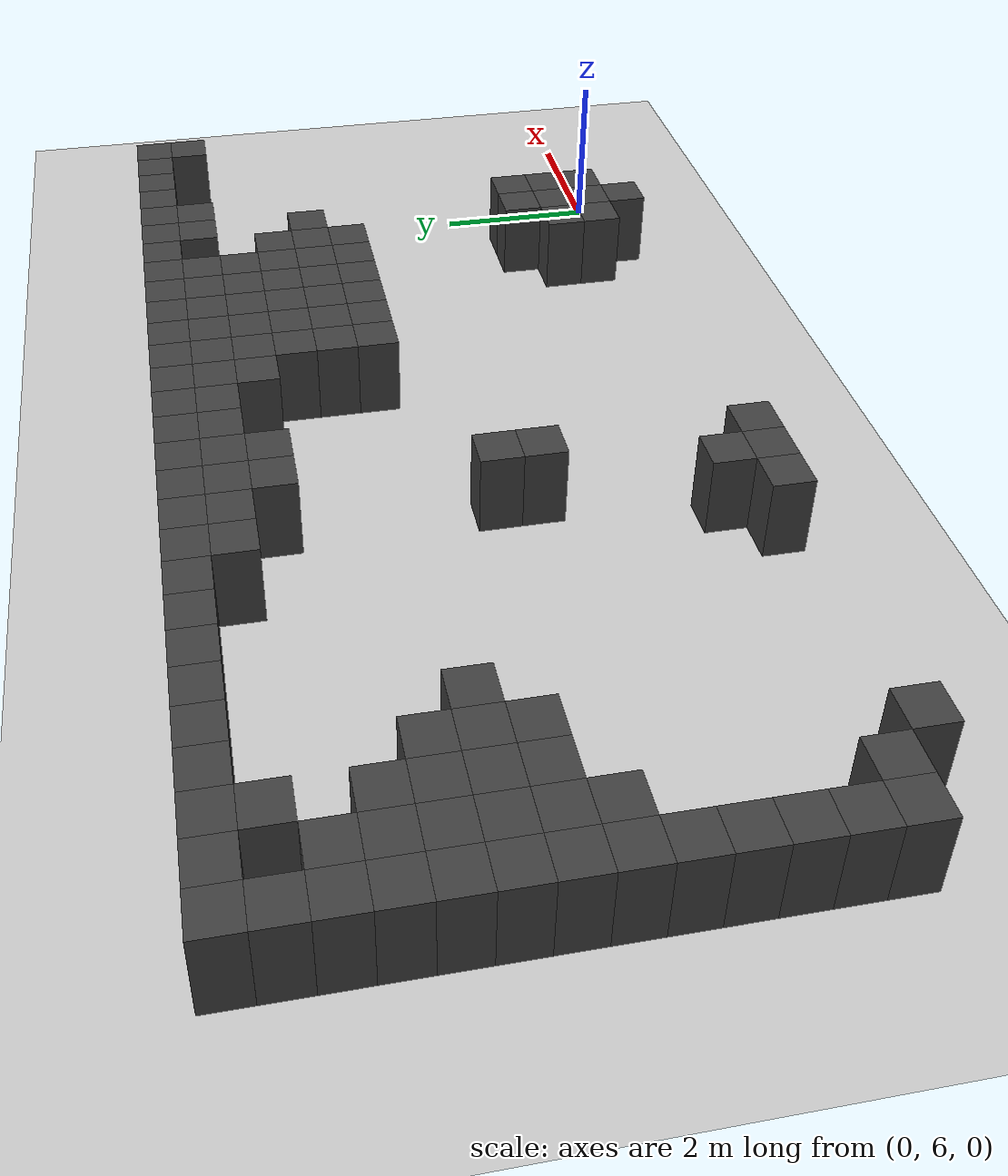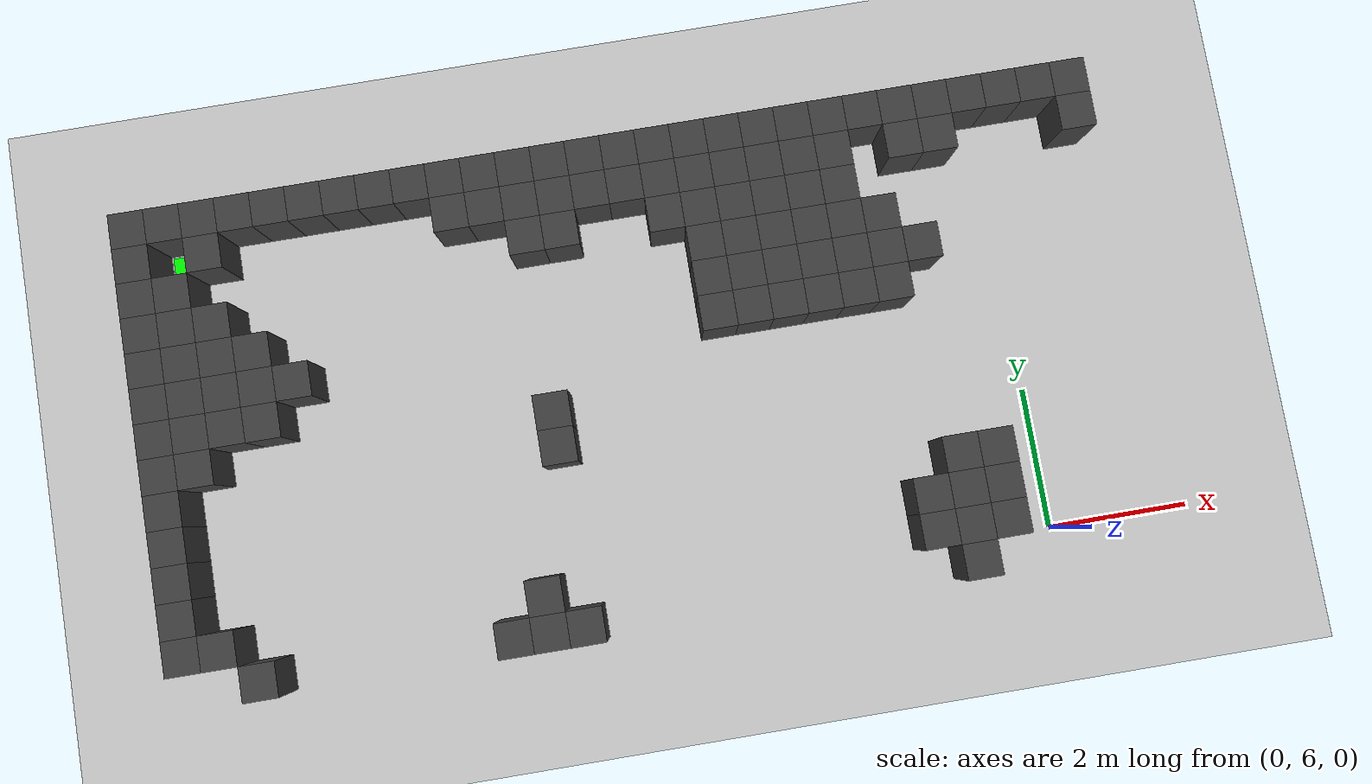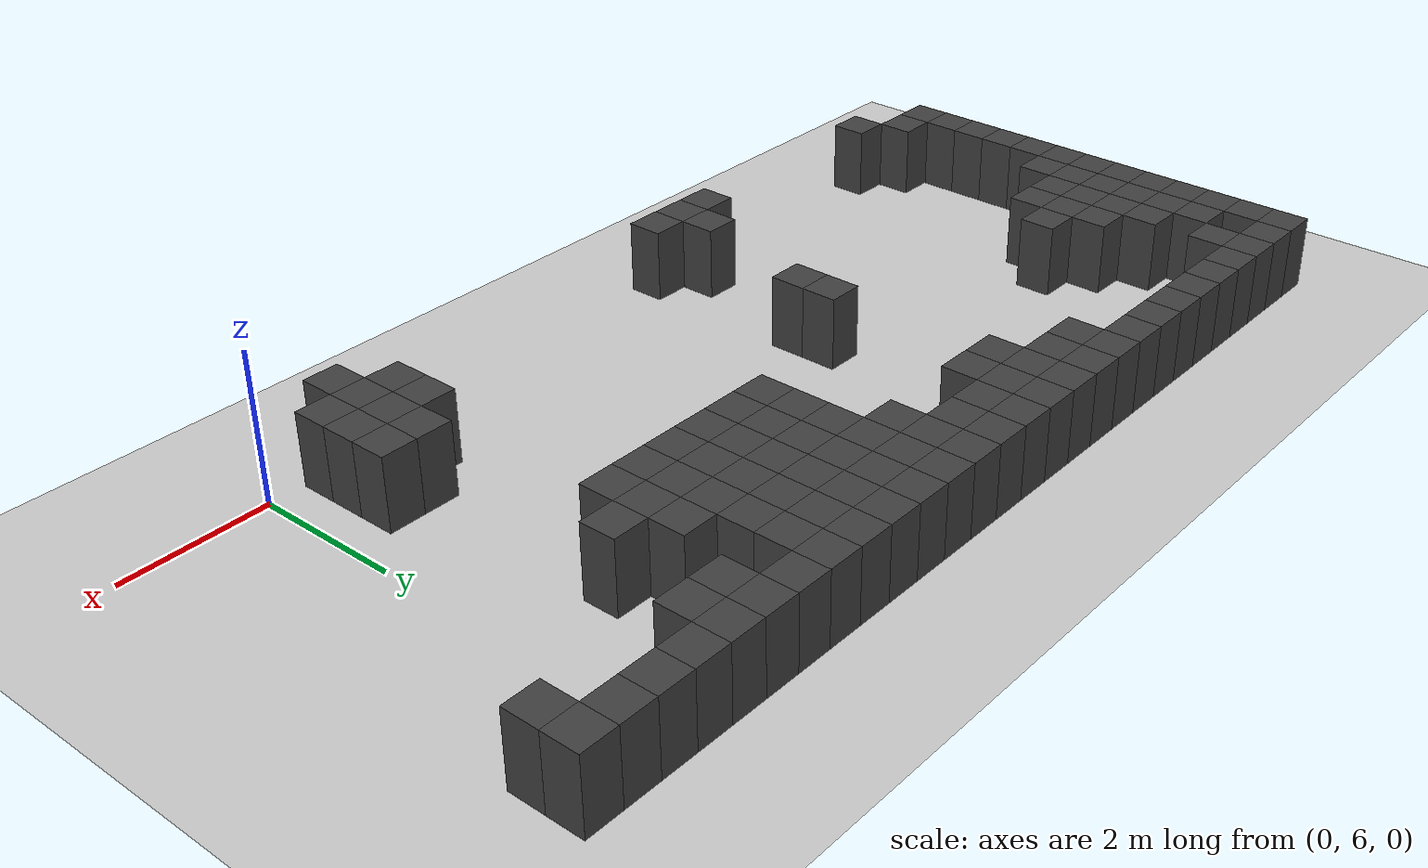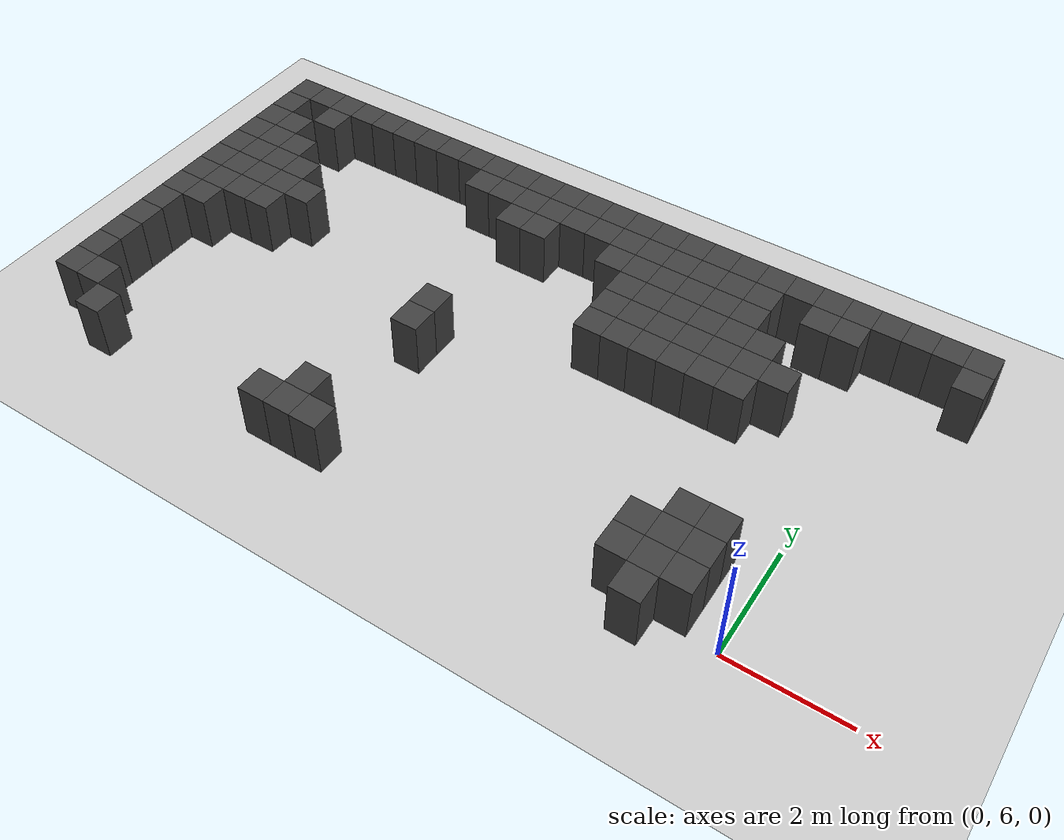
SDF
<sdf version="1.7">
 <world name="map_8829">
  <model name="ground_plane">
   <static>true</static>
   <link name="link">
    <collision name="collision">
     <geometry><plane><normal>0 0 1</normal><size>200 200</size></plane></geometry>
    </collision>
    <visual name="visual">
     <geometry><plane><normal>0 0 1</normal><size>200 200</size></plane></geometry>
     <material><ambient>0.8 0.8 0.8 1</ambient><diffuse>0.8 0.8 0.8 1</diffuse></material>
    </visual>
   </link>
  </model>
  <model name="maze_environment">
   <static>true</static>
   <link name="wall_0">
    <pose>-12.250 12.250 0.500 0 0 0</pose>
    <collision name="col"><geometry><box><size>0.5 0.5 1.0</size></box></geometry></collision>
    <visual name="vis">
     <geometry><box><size>0.5 0.5 1.0</size></box></geometry>
     <material><ambient>0.15 0.15 0.15 1</ambient><diffuse>0.25 0.25 0.25 1</diffuse></material>
    </visual>
   </link>
   <link name="wall_1">
    <pose>-11.750 12.250 0.500 0 0 0</pose>
    <collision name="col"><geometry><box><size>0.5 0.5 1.0</size></box></geometry></collision>
    <visual name="vis">
     <geometry><box><size>0.5 0.5 1.0</size></box></geometry>
     <material><ambient>0.15 0.15 0.15 1</ambient><diffuse>0.25 0.25 0.25 1</diffuse></material>
    </visual>
   </link>
   <link name="wall_2">
    <pose>-11.250 12.250 0.500 0 0 0</pose>
    <collision name="col"><geometry><box><size>0.5 0.5 1.0</size></box></geometry></collision>
    <visual name="vis">
     <geometry><box><size>0.5 0.5 1.0</size></box></geometry>
     <material><ambient>0.15 0.15 0.15 1</ambient><diffuse>0.25 0.25 0.25 1</diffuse></material>
    </visual>
   </link>
   <link name="wall_3">
    <pose>-10.750 12.250 0.500 0 0 0</pose>
    <collision name="col"><geometry><box><size>0.5 0.5 1.0</size></box></geometry></collision>
    <visual name="vis">
     <geometry><box><size>0.5 0.5 1.0</size></box></geometry>
     <material><ambient>0.15 0.15 0.15 1</ambient><diffuse>0.25 0.25 0.25 1</diffuse></material>
    </visual>
   </link>
   <link name="wall_4">
    <pose>-10.250 12.250 0.500 0 0 0</pose>
    <collision name="col"><geometry><box><size>0.5 0.5 1.0</size></box></geometry></collision>
    <visual name="vis">
     <geometry><box><size>0.5 0.5 1.0</size></box></geometry>
     <material><ambient>0.15 0.15 0.15 1</ambient><diffuse>0.25 0.25 0.25 1</diffuse></material>
    </visual>
   </link>
   <link name="wall_5">
    <pose>-9.750 12.250 0.500 0 0 0</pose>
    <collision name="col"><geometry><box><size>0.5 0.5 1.0</size></box></geometry></collision>
    <visual name="vis">
     <geometry><box><size>0.5 0.5 1.0</size></box></geometry>
     <material><ambient>0.15 0.15 0.15 1</ambient><diffuse>0.25 0.25 0.25 1</diffuse></material>
    </visual>
   </link>
   <link name="wall_6">
    <pose>-9.250 12.250 0.500 0 0 0</pose>
    <collision name="col"><geometry><box><size>0.5 0.5 1.0</size></box></geometry></collision>
    <visual name="vis">
     <geometry><box><size>0.5 0.5 1.0</size></box></geometry>
     <material><ambient>0.15 0.15 0.15 1</ambient><diffuse>0.25 0.25 0.25 1</diffuse></material>
    </visual>
   </link>
   <link name="wall_7">
    <pose>-8.750 12.250 0.500 0 0 0</pose>
    <collision name="col"><geometry><box><size>0.5 0.5 1.0</size></box></geometry></collision>
    <visual name="vis">
     <geometry><box><size>0.5 0.5 1.0</size></box></geometry>
     <material><ambient>0.15 0.15 0.15 1</ambient><diffuse>0.25 0.25 0.25 1</diffuse></material>
    </visual>
   </link>
   <link name="wall_8">
    <pose>-8.250 12.250 0.500 0 0 0</pose>
    <collision name="col"><geometry><box><size>0.5 0.5 1.0</size></box></geometry></collision>
    <visual name="vis">
     <geometry><box><size>0.5 0.5 1.0</size></box></geometry>
     <material><ambient>0.15 0.15 0.15 1</ambient><diffuse>0.25 0.25 0.25 1</diffuse></material>
    </visual>
   </link>
   <link name="wall_9">
    <pose>-7.750 12.250 0.500 0 0 0</pose>
    <collision name="col"><geometry><box><size>0.5 0.5 1.0</size></box></geometry></collision>
    <visual name="vis">
     <geometry><box><size>0.5 0.5 1.0</size></box></geometry>
     <material><ambient>0.15 0.15 0.15 1</ambient><diffuse>0.25 0.25 0.25 1</diffuse></material>
    </visual>
   </link>
   <link name="wall_10">
    <pose>-7.250 12.250 0.500 0 0 0</pose>
    <collision name="col"><geometry><box><size>0.5 0.5 1.0</size></box></geometry></collision>
    <visual name="vis">
     <geometry><box><size>0.5 0.5 1.0</size></box></geometry>
     <material><ambient>0.15 0.15 0.15 1</ambient><diffuse>0.25 0.25 0.25 1</diffuse></material>
    </visual>
   </link>
   <link name="wall_11">
    <pose>-6.750 12.250 0.500 0 0 0</pose>
    <collision name="col"><geometry><box><size>0.5 0.5 1.0</size></box></geometry></collision>
    <visual name="vis">
     <geometry><box><size>0.5 0.5 1.0</size></box></geometry>
     <material><ambient>0.15 0.15 0.15 1</ambient><diffuse>0.25 0.25 0.25 1</diffuse></material>
    </visual>
   </link>
   <link name="wall_12">
    <pose>-6.250 12.250 0.500 0 0 0</pose>
    <collision name="col"><geometry><box><size>0.5 0.5 1.0</size></box></geometry></collision>
    <visual name="vis">
     <geometry><box><size>0.5 0.5 1.0</size></box></geometry>
     <material><ambient>0.15 0.15 0.15 1</ambient><diffuse>0.25 0.25 0.25 1</diffuse></material>
    </visual>
   </link>
   <link name="wall_13">
    <pose>-5.750 12.250 0.500 0 0 0</pose>
    <collision name="col"><geometry><box><size>0.5 0.5 1.0</size></box></geometry></collision>
    <visual name="vis">
     <geometry><box><size>0.5 0.5 1.0</size></box></geometry>
     <material><ambient>0.15 0.15 0.15 1</ambient><diffuse>0.25 0.25 0.25 1</diffuse></material>
    </visual>
   </link>
   <link name="wall_14">
    <pose>-5.250 12.250 0.500 0 0 0</pose>
    <collision name="col"><geometry><box><size>0.5 0.5 1.0</size></box></geometry></collision>
    <visual name="vis">
     <geometry><box><size>0.5 0.5 1.0</size></box></geometry>
     <material><ambient>0.15 0.15 0.15 1</ambient><diffuse>0.25 0.25 0.25 1</diffuse></material>
    </visual>
   </link>
   <link name="wall_15">
    <pose>-4.750 12.250 0.500 0 0 0</pose>
    <collision name="col"><geometry><box><size>0.5 0.5 1.0</size></box></geometry></collision>
    <visual name="vis">
     <geometry><box><size>0.5 0.5 1.0</size></box></geometry>
     <material><ambient>0.15 0.15 0.15 1</ambient><diffuse>0.25 0.25 0.25 1</diffuse></material>
    </visual>
   </link>
   <link name="wall_16">
    <pose>-4.250 12.250 0.500 0 0 0</pose>
    <collision name="col"><geometry><box><size>0.5 0.5 1.0</size></box></geometry></collision>
    <visual name="vis">
     <geometry><box><size>0.5 0.5 1.0</size></box></geometry>
     <material><ambient>0.15 0.15 0.15 1</ambient><diffuse>0.25 0.25 0.25 1</diffuse></material>
    </visual>
   </link>
   <link name="wall_17">
    <pose>-3.750 12.250 0.500 0 0 0</pose>
    <collision name="col"><geometry><box><size>0.5 0.5 1.0</size></box></geometry></collision>
    <visual name="vis">
     <geometry><box><size>0.5 0.5 1.0</size></box></geometry>
     <material><ambient>0.15 0.15 0.15 1</ambient><diffuse>0.25 0.25 0.25 1</diffuse></material>
    </visual>
   </link>
   <link name="wall_18">
    <pose>-3.250 12.250 0.500 0 0 0</pose>
    <collision name="col"><geometry><box><size>0.5 0.5 1.0</size></box></geometry></collision>
    <visual name="vis">
     <geometry><box><size>0.5 0.5 1.0</size></box></geometry>
     <material><ambient>0.15 0.15 0.15 1</ambient><diffuse>0.25 0.25 0.25 1</diffuse></material>
    </visual>
   </link>
   <link name="wall_19">
    <pose>-2.750 12.250 0.500 0 0 0</pose>
    <collision name="col"><geometry><box><size>0.5 0.5 1.0</size></box></geometry></collision>
    <visual name="vis">
     <geometry><box><size>0.5 0.5 1.0</size></box></geometry>
     <material><ambient>0.15 0.15 0.15 1</ambient><diffuse>0.25 0.25 0.25 1</diffuse></material>
    </visual>
   </link>
   <link name="wall_20">
    <pose>-2.250 12.250 0.500 0 0 0</pose>
    <collision name="col"><geometry><box><size>0.5 0.5 1.0</size></box></geometry></collision>
    <visual name="vis">
     <geometry><box><size>0.5 0.5 1.0</size></box></geometry>
     <material><ambient>0.15 0.15 0.15 1</ambient><diffuse>0.25 0.25 0.25 1</diffuse></material>
    </visual>
   </link>
   <link name="wall_21">
    <pose>-1.750 12.250 0.500 0 0 0</pose>
    <collision name="col"><geometry><box><size>0.5 0.5 1.0</size></box></geometry></collision>
    <visual name="vis">
     <geometry><box><size>0.5 0.5 1.0</size></box></geometry>
     <material><ambient>0.15 0.15 0.15 1</ambient><diffuse>0.25 0.25 0.25 1</diffuse></material>
    </visual>
   </link>
   <link name="wall_22">
    <pose>-1.250 12.250 0.500 0 0 0</pose>
    <collision name="col"><geometry><box><size>0.5 0.5 1.0</size></box></geometry></collision>
    <visual name="vis">
     <geometry><box><size>0.5 0.5 1.0</size></box></geometry>
     <material><ambient>0.15 0.15 0.15 1</ambient><diffuse>0.25 0.25 0.25 1</diffuse></material>
    </visual>
   </link>
   <link name="wall_23">
    <pose>-0.750 12.250 0.500 0 0 0</pose>
    <collision name="col"><geometry><box><size>0.5 0.5 1.0</size></box></geometry></collision>
    <visual name="vis">
     <geometry><box><size>0.5 0.5 1.0</size></box></geometry>
     <material><ambient>0.15 0.15 0.15 1</ambient><diffuse>0.25 0.25 0.25 1</diffuse></material>
    </visual>
   </link>
   <link name="wall_24">
    <pose>-0.250 12.250 0.500 0 0 0</pose>
    <collision name="col"><geometry><box><size>0.5 0.5 1.0</size></box></geometry></collision>
    <visual name="vis">
     <geometry><box><size>0.5 0.5 1.0</size></box></geometry>
     <material><ambient>0.15 0.15 0.15 1</ambient><diffuse>0.25 0.25 0.25 1</diffuse></material>
    </visual>
   </link>
   <link name="wall_25">
    <pose>0.250 12.250 0.500 0 0 0</pose>
    <collision name="col"><geometry><box><size>0.5 0.5 1.0</size></box></geometry></collision>
    <visual name="vis">
     <geometry><box><size>0.5 0.5 1.0</size></box></geometry>
     <material><ambient>0.15 0.15 0.15 1</ambient><diffuse>0.25 0.25 0.25 1</diffuse></material>
    </visual>
   </link>
   <link name="wall_26">
    <pose>0.750 12.250 0.500 0 0 0</pose>
    <collision name="col"><geometry><box><size>0.5 0.5 1.0</size></box></geometry></collision>
    <visual name="vis">
     <geometry><box><size>0.5 0.5 1.0</size></box></geometry>
     <material><ambient>0.15 0.15 0.15 1</ambient><diffuse>0.25 0.25 0.25 1</diffuse></material>
    </visual>
   </link>
   <link name="wall_27">
    <pose>1.250 12.250 0.500 0 0 0</pose>
    <collision name="col"><geometry><box><size>0.5 0.5 1.0</size></box></geometry></collision>
    <visual name="vis">
     <geometry><box><size>0.5 0.5 1.0</size></box></geometry>
     <material><ambient>0.15 0.15 0.15 1</ambient><diffuse>0.25 0.25 0.25 1</diffuse></material>
    </visual>
   </link>
   <link name="wall_50">
    <pose>-12.250 11.750 0.500 0 0 0</pose>
    <collision name="col"><geometry><box><size>0.5 0.5 1.0</size></box></geometry></collision>
    <visual name="vis">
     <geometry><box><size>0.5 0.5 1.0</size></box></geometry>
     <material><ambient>0.15 0.15 0.15 1</ambient><diffuse>0.25 0.25 0.25 1</diffuse></material>
    </visual>
   </link>
   <link name="wall_51">
    <pose>-11.250 11.750 0.500 0 0 0</pose>
    <collision name="col"><geometry><box><size>0.5 0.5 1.0</size></box></geometry></collision>
    <visual name="vis">
     <geometry><box><size>0.5 0.5 1.0</size></box></geometry>
     <material><ambient>0.15 0.15 0.15 1</ambient><diffuse>0.25 0.25 0.25 1</diffuse></material>
    </visual>
   </link>
   <link name="wall_52">
    <pose>-7.750 11.750 0.500 0 0 0</pose>
    <collision name="col"><geometry><box><size>0.5 0.5 1.0</size></box></geometry></collision>
    <visual name="vis">
     <geometry><box><size>0.5 0.5 1.0</size></box></geometry>
     <material><ambient>0.15 0.15 0.15 1</ambient><diffuse>0.25 0.25 0.25 1</diffuse></material>
    </visual>
   </link>
   <link name="wall_53">
    <pose>-7.250 11.750 0.500 0 0 0</pose>
    <collision name="col"><geometry><box><size>0.5 0.5 1.0</size></box></geometry></collision>
    <visual name="vis">
     <geometry><box><size>0.5 0.5 1.0</size></box></geometry>
     <material><ambient>0.15 0.15 0.15 1</ambient><diffuse>0.25 0.25 0.25 1</diffuse></material>
    </visual>
   </link>
   <link name="wall_54">
    <pose>-6.750 11.750 0.500 0 0 0</pose>
    <collision name="col"><geometry><box><size>0.5 0.5 1.0</size></box></geometry></collision>
    <visual name="vis">
     <geometry><box><size>0.5 0.5 1.0</size></box></geometry>
     <material><ambient>0.15 0.15 0.15 1</ambient><diffuse>0.25 0.25 0.25 1</diffuse></material>
    </visual>
   </link>
   <link name="wall_55">
    <pose>-6.250 11.750 0.500 0 0 0</pose>
    <collision name="col"><geometry><box><size>0.5 0.5 1.0</size></box></geometry></collision>
    <visual name="vis">
     <geometry><box><size>0.5 0.5 1.0</size></box></geometry>
     <material><ambient>0.15 0.15 0.15 1</ambient><diffuse>0.25 0.25 0.25 1</diffuse></material>
    </visual>
   </link>
   <link name="wall_56">
    <pose>-5.750 11.750 0.500 0 0 0</pose>
    <collision name="col"><geometry><box><size>0.5 0.5 1.0</size></box></geometry></collision>
    <visual name="vis">
     <geometry><box><size>0.5 0.5 1.0</size></box></geometry>
     <material><ambient>0.15 0.15 0.15 1</ambient><diffuse>0.25 0.25 0.25 1</diffuse></material>
    </visual>
   </link>
   <link name="wall_57">
    <pose>-5.250 11.750 0.500 0 0 0</pose>
    <collision name="col"><geometry><box><size>0.5 0.5 1.0</size></box></geometry></collision>
    <visual name="vis">
     <geometry><box><size>0.5 0.5 1.0</size></box></geometry>
     <material><ambient>0.15 0.15 0.15 1</ambient><diffuse>0.25 0.25 0.25 1</diffuse></material>
    </visual>
   </link>
   <link name="wall_58">
    <pose>-4.750 11.750 0.500 0 0 0</pose>
    <collision name="col"><geometry><box><size>0.5 0.5 1.0</size></box></geometry></collision>
    <visual name="vis">
     <geometry><box><size>0.5 0.5 1.0</size></box></geometry>
     <material><ambient>0.15 0.15 0.15 1</ambient><diffuse>0.25 0.25 0.25 1</diffuse></material>
    </visual>
   </link>
   <link name="wall_59">
    <pose>-4.250 11.750 0.500 0 0 0</pose>
    <collision name="col"><geometry><box><size>0.5 0.5 1.0</size></box></geometry></collision>
    <visual name="vis">
     <geometry><box><size>0.5 0.5 1.0</size></box></geometry>
     <material><ambient>0.15 0.15 0.15 1</ambient><diffuse>0.25 0.25 0.25 1</diffuse></material>
    </visual>
   </link>
   <link name="wall_60">
    <pose>-3.750 11.750 0.500 0 0 0</pose>
    <collision name="col"><geometry><box><size>0.5 0.5 1.0</size></box></geometry></collision>
    <visual name="vis">
     <geometry><box><size>0.5 0.5 1.0</size></box></geometry>
     <material><ambient>0.15 0.15 0.15 1</ambient><diffuse>0.25 0.25 0.25 1</diffuse></material>
    </visual>
   </link>
   <link name="wall_61">
    <pose>-3.250 11.750 0.500 0 0 0</pose>
    <collision name="col"><geometry><box><size>0.5 0.5 1.0</size></box></geometry></collision>
    <visual name="vis">
     <geometry><box><size>0.5 0.5 1.0</size></box></geometry>
     <material><ambient>0.15 0.15 0.15 1</ambient><diffuse>0.25 0.25 0.25 1</diffuse></material>
    </visual>
   </link>
   <link name="wall_62">
    <pose>-2.750 11.750 0.500 0 0 0</pose>
    <collision name="col"><geometry><box><size>0.5 0.5 1.0</size></box></geometry></collision>
    <visual name="vis">
     <geometry><box><size>0.5 0.5 1.0</size></box></geometry>
     <material><ambient>0.15 0.15 0.15 1</ambient><diffuse>0.25 0.25 0.25 1</diffuse></material>
    </visual>
   </link>
   <link name="wall_63">
    <pose>-2.250 11.750 0.500 0 0 0</pose>
    <collision name="col"><geometry><box><size>0.5 0.5 1.0</size></box></geometry></collision>
    <visual name="vis">
     <geometry><box><size>0.5 0.5 1.0</size></box></geometry>
     <material><ambient>0.15 0.15 0.15 1</ambient><diffuse>0.25 0.25 0.25 1</diffuse></material>
    </visual>
   </link>
   <link name="wall_64">
    <pose>-1.250 11.750 0.500 0 0 0</pose>
    <collision name="col"><geometry><box><size>0.5 0.5 1.0</size></box></geometry></collision>
    <visual name="vis">
     <geometry><box><size>0.5 0.5 1.0</size></box></geometry>
     <material><ambient>0.15 0.15 0.15 1</ambient><diffuse>0.25 0.25 0.25 1</diffuse></material>
    </visual>
   </link>
   <link name="wall_65">
    <pose>-0.750 11.750 0.500 0 0 0</pose>
    <collision name="col"><geometry><box><size>0.5 0.5 1.0</size></box></geometry></collision>
    <visual name="vis">
     <geometry><box><size>0.5 0.5 1.0</size></box></geometry>
     <material><ambient>0.15 0.15 0.15 1</ambient><diffuse>0.25 0.25 0.25 1</diffuse></material>
    </visual>
   </link>
   <link name="wall_66">
    <pose>1.250 11.750 0.500 0 0 0</pose>
    <collision name="col"><geometry><box><size>0.5 0.5 1.0</size></box></geometry></collision>
    <visual name="vis">
     <geometry><box><size>0.5 0.5 1.0</size></box></geometry>
     <material><ambient>0.15 0.15 0.15 1</ambient><diffuse>0.25 0.25 0.25 1</diffuse></material>
    </visual>
   </link>
   <link name="wall_85">
    <pose>-12.250 11.250 0.500 0 0 0</pose>
    <collision name="col"><geometry><box><size>0.5 0.5 1.0</size></box></geometry></collision>
    <visual name="vis">
     <geometry><box><size>0.5 0.5 1.0</size></box></geometry>
     <material><ambient>0.15 0.15 0.15 1</ambient><diffuse>0.25 0.25 0.25 1</diffuse></material>
    </visual>
   </link>
   <link name="wall_86">
    <pose>-11.750 11.250 0.500 0 0 0</pose>
    <collision name="col"><geometry><box><size>0.5 0.5 1.0</size></box></geometry></collision>
    <visual name="vis">
     <geometry><box><size>0.5 0.5 1.0</size></box></geometry>
     <material><ambient>0.15 0.15 0.15 1</ambient><diffuse>0.25 0.25 0.25 1</diffuse></material>
    </visual>
   </link>
   <link name="wall_87">
    <pose>-6.750 11.250 0.500 0 0 0</pose>
    <collision name="col"><geometry><box><size>0.5 0.5 1.0</size></box></geometry></collision>
    <visual name="vis">
     <geometry><box><size>0.5 0.5 1.0</size></box></geometry>
     <material><ambient>0.15 0.15 0.15 1</ambient><diffuse>0.25 0.25 0.25 1</diffuse></material>
    </visual>
   </link>
   <link name="wall_88">
    <pose>-6.250 11.250 0.500 0 0 0</pose>
    <collision name="col"><geometry><box><size>0.5 0.5 1.0</size></box></geometry></collision>
    <visual name="vis">
     <geometry><box><size>0.5 0.5 1.0</size></box></geometry>
     <material><ambient>0.15 0.15 0.15 1</ambient><diffuse>0.25 0.25 0.25 1</diffuse></material>
    </visual>
   </link>
   <link name="wall_89">
    <pose>-4.750 11.250 0.500 0 0 0</pose>
    <collision name="col"><geometry><box><size>0.5 0.5 1.0</size></box></geometry></collision>
    <visual name="vis">
     <geometry><box><size>0.5 0.5 1.0</size></box></geometry>
     <material><ambient>0.15 0.15 0.15 1</ambient><diffuse>0.25 0.25 0.25 1</diffuse></material>
    </visual>
   </link>
   <link name="wall_90">
    <pose>-4.250 11.250 0.500 0 0 0</pose>
    <collision name="col"><geometry><box><size>0.5 0.5 1.0</size></box></geometry></collision>
    <visual name="vis">
     <geometry><box><size>0.5 0.5 1.0</size></box></geometry>
     <material><ambient>0.15 0.15 0.15 1</ambient><diffuse>0.25 0.25 0.25 1</diffuse></material>
    </visual>
   </link>
   <link name="wall_91">
    <pose>-3.750 11.250 0.500 0 0 0</pose>
    <collision name="col"><geometry><box><size>0.5 0.5 1.0</size></box></geometry></collision>
    <visual name="vis">
     <geometry><box><size>0.5 0.5 1.0</size></box></geometry>
     <material><ambient>0.15 0.15 0.15 1</ambient><diffuse>0.25 0.25 0.25 1</diffuse></material>
    </visual>
   </link>
   <link name="wall_92">
    <pose>-3.250 11.250 0.500 0 0 0</pose>
    <collision name="col"><geometry><box><size>0.5 0.5 1.0</size></box></geometry></collision>
    <visual name="vis">
     <geometry><box><size>0.5 0.5 1.0</size></box></geometry>
     <material><ambient>0.15 0.15 0.15 1</ambient><diffuse>0.25 0.25 0.25 1</diffuse></material>
    </visual>
   </link>
   <link name="wall_93">
    <pose>-2.750 11.250 0.500 0 0 0</pose>
    <collision name="col"><geometry><box><size>0.5 0.5 1.0</size></box></geometry></collision>
    <visual name="vis">
     <geometry><box><size>0.5 0.5 1.0</size></box></geometry>
     <material><ambient>0.15 0.15 0.15 1</ambient><diffuse>0.25 0.25 0.25 1</diffuse></material>
    </visual>
   </link>
   <link name="wall_94">
    <pose>-2.250 11.250 0.500 0 0 0</pose>
    <collision name="col"><geometry><box><size>0.5 0.5 1.0</size></box></geometry></collision>
    <visual name="vis">
     <geometry><box><size>0.5 0.5 1.0</size></box></geometry>
     <material><ambient>0.15 0.15 0.15 1</ambient><diffuse>0.25 0.25 0.25 1</diffuse></material>
    </visual>
   </link>
   <link name="wall_105">
    <pose>-12.250 10.750 0.500 0 0 0</pose>
    <collision name="col"><geometry><box><size>0.5 0.5 1.0</size></box></geometry></collision>
    <visual name="vis">
     <geometry><box><size>0.5 0.5 1.0</size></box></geometry>
     <material><ambient>0.15 0.15 0.15 1</ambient><diffuse>0.25 0.25 0.25 1</diffuse></material>
    </visual>
   </link>
   <link name="wall_106">
    <pose>-11.750 10.750 0.500 0 0 0</pose>
    <collision name="col"><geometry><box><size>0.5 0.5 1.0</size></box></geometry></collision>
    <visual name="vis">
     <geometry><box><size>0.5 0.5 1.0</size></box></geometry>
     <material><ambient>0.15 0.15 0.15 1</ambient><diffuse>0.25 0.25 0.25 1</diffuse></material>
    </visual>
   </link>
   <link name="wall_107">
    <pose>-11.250 10.750 0.500 0 0 0</pose>
    <collision name="col"><geometry><box><size>0.5 0.5 1.0</size></box></geometry></collision>
    <visual name="vis">
     <geometry><box><size>0.5 0.5 1.0</size></box></geometry>
     <material><ambient>0.15 0.15 0.15 1</ambient><diffuse>0.25 0.25 0.25 1</diffuse></material>
    </visual>
   </link>
   <link name="wall_108">
    <pose>-4.250 10.750 0.500 0 0 0</pose>
    <collision name="col"><geometry><box><size>0.5 0.5 1.0</size></box></geometry></collision>
    <visual name="vis">
     <geometry><box><size>0.5 0.5 1.0</size></box></geometry>
     <material><ambient>0.15 0.15 0.15 1</ambient><diffuse>0.25 0.25 0.25 1</diffuse></material>
    </visual>
   </link>
   <link name="wall_109">
    <pose>-3.750 10.750 0.500 0 0 0</pose>
    <collision name="col"><geometry><box><size>0.5 0.5 1.0</size></box></geometry></collision>
    <visual name="vis">
     <geometry><box><size>0.5 0.5 1.0</size></box></geometry>
     <material><ambient>0.15 0.15 0.15 1</ambient><diffuse>0.25 0.25 0.25 1</diffuse></material>
    </visual>
   </link>
   <link name="wall_110">
    <pose>-3.250 10.750 0.500 0 0 0</pose>
    <collision name="col"><geometry><box><size>0.5 0.5 1.0</size></box></geometry></collision>
    <visual name="vis">
     <geometry><box><size>0.5 0.5 1.0</size></box></geometry>
     <material><ambient>0.15 0.15 0.15 1</ambient><diffuse>0.25 0.25 0.25 1</diffuse></material>
    </visual>
   </link>
   <link name="wall_111">
    <pose>-2.750 10.750 0.500 0 0 0</pose>
    <collision name="col"><geometry><box><size>0.5 0.5 1.0</size></box></geometry></collision>
    <visual name="vis">
     <geometry><box><size>0.5 0.5 1.0</size></box></geometry>
     <material><ambient>0.15 0.15 0.15 1</ambient><diffuse>0.25 0.25 0.25 1</diffuse></material>
    </visual>
   </link>
   <link name="wall_112">
    <pose>-2.250 10.750 0.500 0 0 0</pose>
    <collision name="col"><geometry><box><size>0.5 0.5 1.0</size></box></geometry></collision>
    <visual name="vis">
     <geometry><box><size>0.5 0.5 1.0</size></box></geometry>
     <material><ambient>0.15 0.15 0.15 1</ambient><diffuse>0.25 0.25 0.25 1</diffuse></material>
    </visual>
   </link>
   <link name="wall_113">
    <pose>-1.750 10.750 0.500 0 0 0</pose>
    <collision name="col"><geometry><box><size>0.5 0.5 1.0</size></box></geometry></collision>
    <visual name="vis">
     <geometry><box><size>0.5 0.5 1.0</size></box></geometry>
     <material><ambient>0.15 0.15 0.15 1</ambient><diffuse>0.25 0.25 0.25 1</diffuse></material>
    </visual>
   </link>
   <link name="wall_122">
    <pose>-12.250 10.250 0.500 0 0 0</pose>
    <collision name="col"><geometry><box><size>0.5 0.5 1.0</size></box></geometry></collision>
    <visual name="vis">
     <geometry><box><size>0.5 0.5 1.0</size></box></geometry>
     <material><ambient>0.15 0.15 0.15 1</ambient><diffuse>0.25 0.25 0.25 1</diffuse></material>
    </visual>
   </link>
   <link name="wall_123">
    <pose>-11.750 10.250 0.500 0 0 0</pose>
    <collision name="col"><geometry><box><size>0.5 0.5 1.0</size></box></geometry></collision>
    <visual name="vis">
     <geometry><box><size>0.5 0.5 1.0</size></box></geometry>
     <material><ambient>0.15 0.15 0.15 1</ambient><diffuse>0.25 0.25 0.25 1</diffuse></material>
    </visual>
   </link>
   <link name="wall_124">
    <pose>-11.250 10.250 0.500 0 0 0</pose>
    <collision name="col"><geometry><box><size>0.5 0.5 1.0</size></box></geometry></collision>
    <visual name="vis">
     <geometry><box><size>0.5 0.5 1.0</size></box></geometry>
     <material><ambient>0.15 0.15 0.15 1</ambient><diffuse>0.25 0.25 0.25 1</diffuse></material>
    </visual>
   </link>
   <link name="wall_125">
    <pose>-10.750 10.250 0.500 0 0 0</pose>
    <collision name="col"><geometry><box><size>0.5 0.5 1.0</size></box></geometry></collision>
    <visual name="vis">
     <geometry><box><size>0.5 0.5 1.0</size></box></geometry>
     <material><ambient>0.15 0.15 0.15 1</ambient><diffuse>0.25 0.25 0.25 1</diffuse></material>
    </visual>
   </link>
   <link name="wall_126">
    <pose>-4.250 10.250 0.500 0 0 0</pose>
    <collision name="col"><geometry><box><size>0.5 0.5 1.0</size></box></geometry></collision>
    <visual name="vis">
     <geometry><box><size>0.5 0.5 1.0</size></box></geometry>
     <material><ambient>0.15 0.15 0.15 1</ambient><diffuse>0.25 0.25 0.25 1</diffuse></material>
    </visual>
   </link>
   <link name="wall_127">
    <pose>-3.750 10.250 0.500 0 0 0</pose>
    <collision name="col"><geometry><box><size>0.5 0.5 1.0</size></box></geometry></collision>
    <visual name="vis">
     <geometry><box><size>0.5 0.5 1.0</size></box></geometry>
     <material><ambient>0.15 0.15 0.15 1</ambient><diffuse>0.25 0.25 0.25 1</diffuse></material>
    </visual>
   </link>
   <link name="wall_128">
    <pose>-3.250 10.250 0.500 0 0 0</pose>
    <collision name="col"><geometry><box><size>0.5 0.5 1.0</size></box></geometry></collision>
    <visual name="vis">
     <geometry><box><size>0.5 0.5 1.0</size></box></geometry>
     <material><ambient>0.15 0.15 0.15 1</ambient><diffuse>0.25 0.25 0.25 1</diffuse></material>
    </visual>
   </link>
   <link name="wall_129">
    <pose>-2.750 10.250 0.500 0 0 0</pose>
    <collision name="col"><geometry><box><size>0.5 0.5 1.0</size></box></geometry></collision>
    <visual name="vis">
     <geometry><box><size>0.5 0.5 1.0</size></box></geometry>
     <material><ambient>0.15 0.15 0.15 1</ambient><diffuse>0.25 0.25 0.25 1</diffuse></material>
    </visual>
   </link>
   <link name="wall_130">
    <pose>-2.250 10.250 0.500 0 0 0</pose>
    <collision name="col"><geometry><box><size>0.5 0.5 1.0</size></box></geometry></collision>
    <visual name="vis">
     <geometry><box><size>0.5 0.5 1.0</size></box></geometry>
     <material><ambient>0.15 0.15 0.15 1</ambient><diffuse>0.25 0.25 0.25 1</diffuse></material>
    </visual>
   </link>
   <link name="wall_131">
    <pose>-1.750 10.250 0.500 0 0 0</pose>
    <collision name="col"><geometry><box><size>0.5 0.5 1.0</size></box></geometry></collision>
    <visual name="vis">
     <geometry><box><size>0.5 0.5 1.0</size></box></geometry>
     <material><ambient>0.15 0.15 0.15 1</ambient><diffuse>0.25 0.25 0.25 1</diffuse></material>
    </visual>
   </link>
   <link name="wall_132">
    <pose>-1.250 10.250 0.500 0 0 0</pose>
    <collision name="col"><geometry><box><size>0.5 0.5 1.0</size></box></geometry></collision>
    <visual name="vis">
     <geometry><box><size>0.5 0.5 1.0</size></box></geometry>
     <material><ambient>0.15 0.15 0.15 1</ambient><diffuse>0.25 0.25 0.25 1</diffuse></material>
    </visual>
   </link>
   <link name="wall_140">
    <pose>-12.250 9.750 0.500 0 0 0</pose>
    <collision name="col"><geometry><box><size>0.5 0.5 1.0</size></box></geometry></collision>
    <visual name="vis">
     <geometry><box><size>0.5 0.5 1.0</size></box></geometry>
     <material><ambient>0.15 0.15 0.15 1</ambient><diffuse>0.25 0.25 0.25 1</diffuse></material>
    </visual>
   </link>
   <link name="wall_141">
    <pose>-11.750 9.750 0.500 0 0 0</pose>
    <collision name="col"><geometry><box><size>0.5 0.5 1.0</size></box></geometry></collision>
    <visual name="vis">
     <geometry><box><size>0.5 0.5 1.0</size></box></geometry>
     <material><ambient>0.15 0.15 0.15 1</ambient><diffuse>0.25 0.25 0.25 1</diffuse></material>
    </visual>
   </link>
   <link name="wall_142">
    <pose>-11.250 9.750 0.500 0 0 0</pose>
    <collision name="col"><geometry><box><size>0.5 0.5 1.0</size></box></geometry></collision>
    <visual name="vis">
     <geometry><box><size>0.5 0.5 1.0</size></box></geometry>
     <material><ambient>0.15 0.15 0.15 1</ambient><diffuse>0.25 0.25 0.25 1</diffuse></material>
    </visual>
   </link>
   <link name="wall_143">
    <pose>-10.750 9.750 0.500 0 0 0</pose>
    <collision name="col"><geometry><box><size>0.5 0.5 1.0</size></box></geometry></collision>
    <visual name="vis">
     <geometry><box><size>0.5 0.5 1.0</size></box></geometry>
     <material><ambient>0.15 0.15 0.15 1</ambient><diffuse>0.25 0.25 0.25 1</diffuse></material>
    </visual>
   </link>
   <link name="wall_144">
    <pose>-10.250 9.750 0.500 0 0 0</pose>
    <collision name="col"><geometry><box><size>0.5 0.5 1.0</size></box></geometry></collision>
    <visual name="vis">
     <geometry><box><size>0.5 0.5 1.0</size></box></geometry>
     <material><ambient>0.15 0.15 0.15 1</ambient><diffuse>0.25 0.25 0.25 1</diffuse></material>
    </visual>
   </link>
   <link name="wall_145">
    <pose>-4.250 9.750 0.500 0 0 0</pose>
    <collision name="col"><geometry><box><size>0.5 0.5 1.0</size></box></geometry></collision>
    <visual name="vis">
     <geometry><box><size>0.5 0.5 1.0</size></box></geometry>
     <material><ambient>0.15 0.15 0.15 1</ambient><diffuse>0.25 0.25 0.25 1</diffuse></material>
    </visual>
   </link>
   <link name="wall_146">
    <pose>-3.750 9.750 0.500 0 0 0</pose>
    <collision name="col"><geometry><box><size>0.5 0.5 1.0</size></box></geometry></collision>
    <visual name="vis">
     <geometry><box><size>0.5 0.5 1.0</size></box></geometry>
     <material><ambient>0.15 0.15 0.15 1</ambient><diffuse>0.25 0.25 0.25 1</diffuse></material>
    </visual>
   </link>
   <link name="wall_147">
    <pose>-3.250 9.750 0.500 0 0 0</pose>
    <collision name="col"><geometry><box><size>0.5 0.5 1.0</size></box></geometry></collision>
    <visual name="vis">
     <geometry><box><size>0.5 0.5 1.0</size></box></geometry>
     <material><ambient>0.15 0.15 0.15 1</ambient><diffuse>0.25 0.25 0.25 1</diffuse></material>
    </visual>
   </link>
   <link name="wall_148">
    <pose>-2.750 9.750 0.500 0 0 0</pose>
    <collision name="col"><geometry><box><size>0.5 0.5 1.0</size></box></geometry></collision>
    <visual name="vis">
     <geometry><box><size>0.5 0.5 1.0</size></box></geometry>
     <material><ambient>0.15 0.15 0.15 1</ambient><diffuse>0.25 0.25 0.25 1</diffuse></material>
    </visual>
   </link>
   <link name="wall_149">
    <pose>-2.250 9.750 0.500 0 0 0</pose>
    <collision name="col"><geometry><box><size>0.5 0.5 1.0</size></box></geometry></collision>
    <visual name="vis">
     <geometry><box><size>0.5 0.5 1.0</size></box></geometry>
     <material><ambient>0.15 0.15 0.15 1</ambient><diffuse>0.25 0.25 0.25 1</diffuse></material>
    </visual>
   </link>
   <link name="wall_150">
    <pose>-1.750 9.750 0.500 0 0 0</pose>
    <collision name="col"><geometry><box><size>0.5 0.5 1.0</size></box></geometry></collision>
    <visual name="vis">
     <geometry><box><size>0.5 0.5 1.0</size></box></geometry>
     <material><ambient>0.15 0.15 0.15 1</ambient><diffuse>0.25 0.25 0.25 1</diffuse></material>
    </visual>
   </link>
   <link name="wall_158">
    <pose>-12.250 9.250 0.500 0 0 0</pose>
    <collision name="col"><geometry><box><size>0.5 0.5 1.0</size></box></geometry></collision>
    <visual name="vis">
     <geometry><box><size>0.5 0.5 1.0</size></box></geometry>
     <material><ambient>0.15 0.15 0.15 1</ambient><diffuse>0.25 0.25 0.25 1</diffuse></material>
    </visual>
   </link>
   <link name="wall_159">
    <pose>-11.750 9.250 0.500 0 0 0</pose>
    <collision name="col"><geometry><box><size>0.5 0.5 1.0</size></box></geometry></collision>
    <visual name="vis">
     <geometry><box><size>0.5 0.5 1.0</size></box></geometry>
     <material><ambient>0.15 0.15 0.15 1</ambient><diffuse>0.25 0.25 0.25 1</diffuse></material>
    </visual>
   </link>
   <link name="wall_160">
    <pose>-11.250 9.250 0.500 0 0 0</pose>
    <collision name="col"><geometry><box><size>0.5 0.5 1.0</size></box></geometry></collision>
    <visual name="vis">
     <geometry><box><size>0.5 0.5 1.0</size></box></geometry>
     <material><ambient>0.15 0.15 0.15 1</ambient><diffuse>0.25 0.25 0.25 1</diffuse></material>
    </visual>
   </link>
   <link name="wall_161">
    <pose>-10.750 9.250 0.500 0 0 0</pose>
    <collision name="col"><geometry><box><size>0.5 0.5 1.0</size></box></geometry></collision>
    <visual name="vis">
     <geometry><box><size>0.5 0.5 1.0</size></box></geometry>
     <material><ambient>0.15 0.15 0.15 1</ambient><diffuse>0.25 0.25 0.25 1</diffuse></material>
    </visual>
   </link>
   <link name="wall_166">
    <pose>-12.250 8.750 0.500 0 0 0</pose>
    <collision name="col"><geometry><box><size>0.5 0.5 1.0</size></box></geometry></collision>
    <visual name="vis">
     <geometry><box><size>0.5 0.5 1.0</size></box></geometry>
     <material><ambient>0.15 0.15 0.15 1</ambient><diffuse>0.25 0.25 0.25 1</diffuse></material>
    </visual>
   </link>
   <link name="wall_167">
    <pose>-11.750 8.750 0.500 0 0 0</pose>
    <collision name="col"><geometry><box><size>0.5 0.5 1.0</size></box></geometry></collision>
    <visual name="vis">
     <geometry><box><size>0.5 0.5 1.0</size></box></geometry>
     <material><ambient>0.15 0.15 0.15 1</ambient><diffuse>0.25 0.25 0.25 1</diffuse></material>
    </visual>
   </link>
   <link name="wall_168">
    <pose>-6.750 8.750 0.500 0 0 0</pose>
    <collision name="col"><geometry><box><size>0.5 0.5 1.0</size></box></geometry></collision>
    <visual name="vis">
     <geometry><box><size>0.5 0.5 1.0</size></box></geometry>
     <material><ambient>0.15 0.15 0.15 1</ambient><diffuse>0.25 0.25 0.25 1</diffuse></material>
    </visual>
   </link>
   <link name="wall_170">
    <pose>-12.250 8.250 0.500 0 0 0</pose>
    <collision name="col"><geometry><box><size>0.5 0.5 1.0</size></box></geometry></collision>
    <visual name="vis">
     <geometry><box><size>0.5 0.5 1.0</size></box></geometry>
     <material><ambient>0.15 0.15 0.15 1</ambient><diffuse>0.25 0.25 0.25 1</diffuse></material>
    </visual>
   </link>
   <link name="wall_171">
    <pose>-6.750 8.250 0.500 0 0 0</pose>
    <collision name="col"><geometry><box><size>0.5 0.5 1.0</size></box></geometry></collision>
    <visual name="vis">
     <geometry><box><size>0.5 0.5 1.0</size></box></geometry>
     <material><ambient>0.15 0.15 0.15 1</ambient><diffuse>0.25 0.25 0.25 1</diffuse></material>
    </visual>
   </link>
   <link name="wall_176">
    <pose>-12.250 7.750 0.500 0 0 0</pose>
    <collision name="col"><geometry><box><size>0.5 0.5 1.0</size></box></geometry></collision>
    <visual name="vis">
     <geometry><box><size>0.5 0.5 1.0</size></box></geometry>
     <material><ambient>0.15 0.15 0.15 1</ambient><diffuse>0.25 0.25 0.25 1</diffuse></material>
    </visual>
   </link>
   <link name="wall_183">
    <pose>-12.250 7.250 0.500 0 0 0</pose>
    <collision name="col"><geometry><box><size>0.5 0.5 1.0</size></box></geometry></collision>
    <visual name="vis">
     <geometry><box><size>0.5 0.5 1.0</size></box></geometry>
     <material><ambient>0.15 0.15 0.15 1</ambient><diffuse>0.25 0.25 0.25 1</diffuse></material>
    </visual>
   </link>
   <link name="wall_184">
    <pose>-1.250 7.250 0.500 0 0 0</pose>
    <collision name="col"><geometry><box><size>0.5 0.5 1.0</size></box></geometry></collision>
    <visual name="vis">
     <geometry><box><size>0.5 0.5 1.0</size></box></geometry>
     <material><ambient>0.15 0.15 0.15 1</ambient><diffuse>0.25 0.25 0.25 1</diffuse></material>
    </visual>
   </link>
   <link name="wall_185">
    <pose>-0.750 7.250 0.500 0 0 0</pose>
    <collision name="col"><geometry><box><size>0.5 0.5 1.0</size></box></geometry></collision>
    <visual name="vis">
     <geometry><box><size>0.5 0.5 1.0</size></box></geometry>
     <material><ambient>0.15 0.15 0.15 1</ambient><diffuse>0.25 0.25 0.25 1</diffuse></material>
    </visual>
   </link>
   <link name="wall_194">
    <pose>-12.250 6.750 0.500 0 0 0</pose>
    <collision name="col"><geometry><box><size>0.5 0.5 1.0</size></box></geometry></collision>
    <visual name="vis">
     <geometry><box><size>0.5 0.5 1.0</size></box></geometry>
     <material><ambient>0.15 0.15 0.15 1</ambient><diffuse>0.25 0.25 0.25 1</diffuse></material>
    </visual>
   </link>
   <link name="wall_195">
    <pose>-1.750 6.750 0.500 0 0 0</pose>
    <collision name="col"><geometry><box><size>0.5 0.5 1.0</size></box></geometry></collision>
    <visual name="vis">
     <geometry><box><size>0.5 0.5 1.0</size></box></geometry>
     <material><ambient>0.15 0.15 0.15 1</ambient><diffuse>0.25 0.25 0.25 1</diffuse></material>
    </visual>
   </link>
   <link name="wall_196">
    <pose>-1.250 6.750 0.500 0 0 0</pose>
    <collision name="col"><geometry><box><size>0.5 0.5 1.0</size></box></geometry></collision>
    <visual name="vis">
     <geometry><box><size>0.5 0.5 1.0</size></box></geometry>
     <material><ambient>0.15 0.15 0.15 1</ambient><diffuse>0.25 0.25 0.25 1</diffuse></material>
    </visual>
   </link>
   <link name="wall_197">
    <pose>-0.750 6.750 0.500 0 0 0</pose>
    <collision name="col"><geometry><box><size>0.5 0.5 1.0</size></box></geometry></collision>
    <visual name="vis">
     <geometry><box><size>0.5 0.5 1.0</size></box></geometry>
     <material><ambient>0.15 0.15 0.15 1</ambient><diffuse>0.25 0.25 0.25 1</diffuse></material>
    </visual>
   </link>
   <link name="wall_207">
    <pose>-12.250 6.250 0.500 0 0 0</pose>
    <collision name="col"><geometry><box><size>0.5 0.5 1.0</size></box></geometry></collision>
    <visual name="vis">
     <geometry><box><size>0.5 0.5 1.0</size></box></geometry>
     <material><ambient>0.15 0.15 0.15 1</ambient><diffuse>0.25 0.25 0.25 1</diffuse></material>
    </visual>
   </link>
   <link name="wall_208">
    <pose>-11.750 6.250 0.500 0 0 0</pose>
    <collision name="col"><geometry><box><size>0.5 0.5 1.0</size></box></geometry></collision>
    <visual name="vis">
     <geometry><box><size>0.5 0.5 1.0</size></box></geometry>
     <material><ambient>0.15 0.15 0.15 1</ambient><diffuse>0.25 0.25 0.25 1</diffuse></material>
    </visual>
   </link>
   <link name="wall_209">
    <pose>-7.250 6.250 0.500 0 0 0</pose>
    <collision name="col"><geometry><box><size>0.5 0.5 1.0</size></box></geometry></collision>
    <visual name="vis">
     <geometry><box><size>0.5 0.5 1.0</size></box></geometry>
     <material><ambient>0.15 0.15 0.15 1</ambient><diffuse>0.25 0.25 0.25 1</diffuse></material>
    </visual>
   </link>
   <link name="wall_210">
    <pose>-1.750 6.250 0.500 0 0 0</pose>
    <collision name="col"><geometry><box><size>0.5 0.5 1.0</size></box></geometry></collision>
    <visual name="vis">
     <geometry><box><size>0.5 0.5 1.0</size></box></geometry>
     <material><ambient>0.15 0.15 0.15 1</ambient><diffuse>0.25 0.25 0.25 1</diffuse></material>
    </visual>
   </link>
   <link name="wall_211">
    <pose>-1.250 6.250 0.500 0 0 0</pose>
    <collision name="col"><geometry><box><size>0.5 0.5 1.0</size></box></geometry></collision>
    <visual name="vis">
     <geometry><box><size>0.5 0.5 1.0</size></box></geometry>
     <material><ambient>0.15 0.15 0.15 1</ambient><diffuse>0.25 0.25 0.25 1</diffuse></material>
    </visual>
   </link>
   <link name="wall_212">
    <pose>-0.750 6.250 0.500 0 0 0</pose>
    <collision name="col"><geometry><box><size>0.5 0.5 1.0</size></box></geometry></collision>
    <visual name="vis">
     <geometry><box><size>0.5 0.5 1.0</size></box></geometry>
     <material><ambient>0.15 0.15 0.15 1</ambient><diffuse>0.25 0.25 0.25 1</diffuse></material>
    </visual>
   </link>
   <link name="wall_224">
    <pose>-11.250 5.750 0.500 0 0 0</pose>
    <collision name="col"><geometry><box><size>0.5 0.5 1.0</size></box></geometry></collision>
    <visual name="vis">
     <geometry><box><size>0.5 0.5 1.0</size></box></geometry>
     <material><ambient>0.15 0.15 0.15 1</ambient><diffuse>0.25 0.25 0.25 1</diffuse></material>
    </visual>
   </link>
   <link name="wall_225">
    <pose>-7.750 5.750 0.500 0 0 0</pose>
    <collision name="col"><geometry><box><size>0.5 0.5 1.0</size></box></geometry></collision>
    <visual name="vis">
     <geometry><box><size>0.5 0.5 1.0</size></box></geometry>
     <material><ambient>0.15 0.15 0.15 1</ambient><diffuse>0.25 0.25 0.25 1</diffuse></material>
    </visual>
   </link>
   <link name="wall_226">
    <pose>-7.250 5.750 0.500 0 0 0</pose>
    <collision name="col"><geometry><box><size>0.5 0.5 1.0</size></box></geometry></collision>
    <visual name="vis">
     <geometry><box><size>0.5 0.5 1.0</size></box></geometry>
     <material><ambient>0.15 0.15 0.15 1</ambient><diffuse>0.25 0.25 0.25 1</diffuse></material>
    </visual>
   </link>
   <link name="wall_227">
    <pose>-6.750 5.750 0.500 0 0 0</pose>
    <collision name="col"><geometry><box><size>0.5 0.5 1.0</size></box></geometry></collision>
    <visual name="vis">
     <geometry><box><size>0.5 0.5 1.0</size></box></geometry>
     <material><ambient>0.15 0.15 0.15 1</ambient><diffuse>0.25 0.25 0.25 1</diffuse></material>
    </visual>
   </link>
   <link name="wall_228">
    <pose>-1.250 5.750 0.500 0 0 0</pose>
    <collision name="col"><geometry><box><size>0.5 0.5 1.0</size></box></geometry></collision>
    <visual name="vis">
     <geometry><box><size>0.5 0.5 1.0</size></box></geometry>
     <material><ambient>0.15 0.15 0.15 1</ambient><diffuse>0.25 0.25 0.25 1</diffuse></material>
    </visual>
   </link>
   <link name="start_zone">
    <pose>-11.750 11.750 0.005 0 0 0</pose>
    <visual name="vis">
     <geometry><box><size>0.45 0.45 0.01</size></box></geometry>
     <material>
      <ambient>0.0 1.0 0.0 1</ambient>
      <diffuse>0.0 1.0 0.0 1</diffuse>
      <emissive>0.00 0.60 0.00 1</emissive>
     </material>
    </visual>
   </link>
  </model>
 </world>
</sdf>
